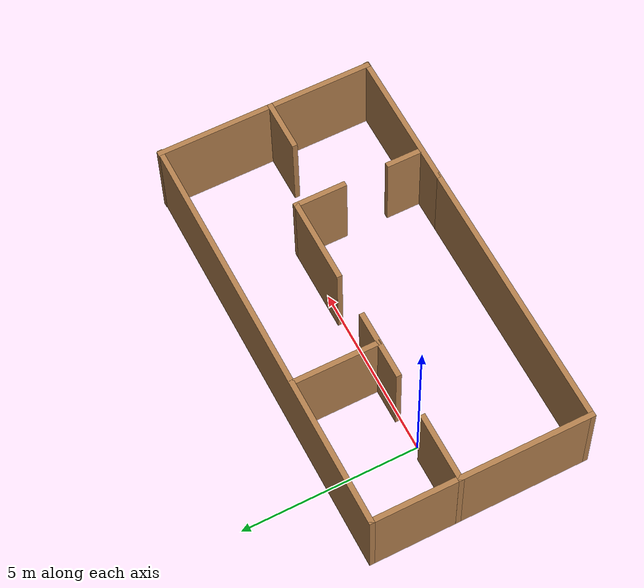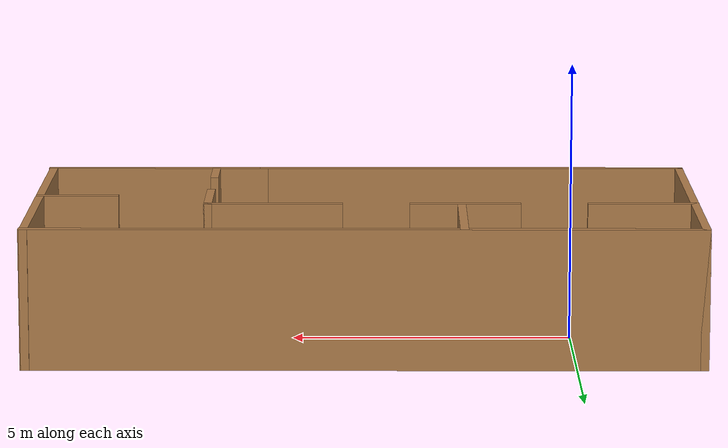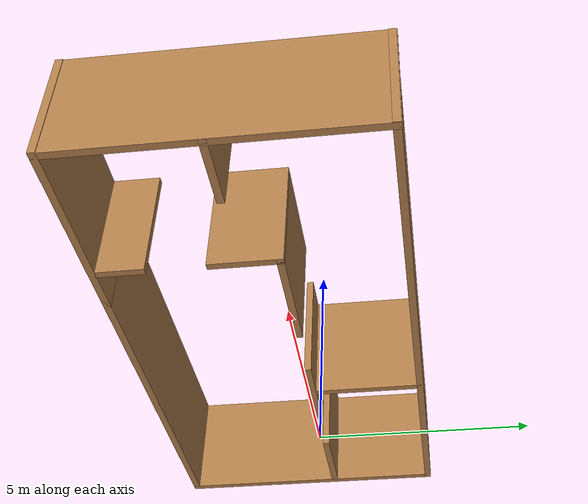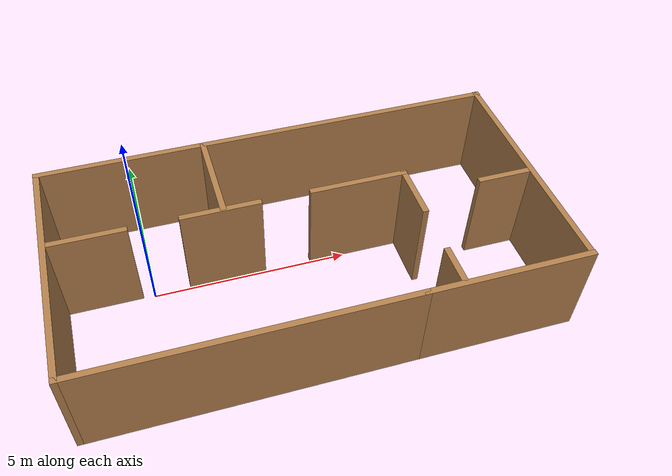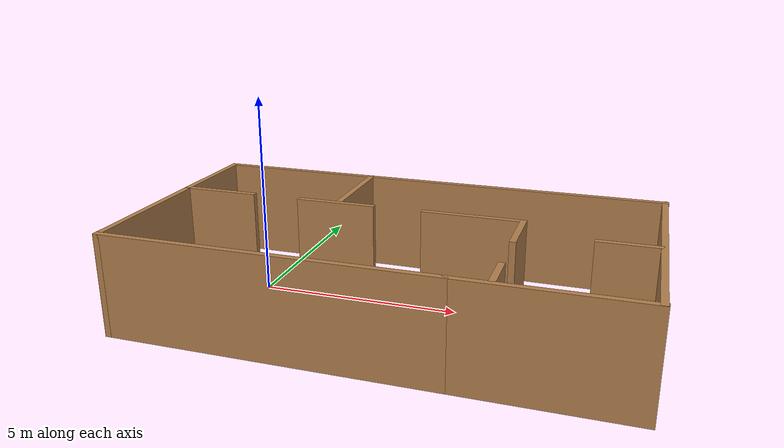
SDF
<?xml version='1.0'?>
<sdf version='1.6'>
  <model name='CASA_lab'>
    <pose frame=''>3.7016 -0.524612 0 0 -0 0</pose>
    <link name='Wall_0'>
      <collision name='Wall_0_Collision'>
        <geometry>
          <box>
            <size>8 0.15 2.5</size>
          </box>
        </geometry>
        <pose frame=''>0 0 1.25 0 -0 0</pose>
      </collision>
      <visual name='Wall_0_Visual'>
        <pose frame=''>0 0 1.25 0 -0 0</pose>
        <geometry>
          <box>
            <size>8 0.15 2.5</size>
          </box>
        </geometry>
        <material>
          <script>
            <uri>file://media/materials/scripts/gazebo.material</uri>
            <name>Gazebo/Wood</name>
          </script>
          <ambient>1 1 1 1</ambient>
        </material>
        <meta>
          <layer>0</layer>
        </meta>
      </visual>
      <pose frame=''>-1.99791 -3.05756 0 0 -0 0</pose>
    </link>
    <link name='Wall_12'>
      <collision name='Wall_12_Collision'>
        <geometry>
          <box>
            <size>2 0.15 2.5</size>
          </box>
        </geometry>
        <pose frame=''>0 0 1.25 0 -0 0</pose>
      </collision>
      <visual name='Wall_12_Visual'>
        <pose frame=''>0 0 1.25 0 -0 0</pose>
        <geometry>
          <box>
            <size>2 0.15 2.5</size>
          </box>
        </geometry>
        <material>
          <script>
            <uri>file://media/materials/scripts/gazebo.material</uri>
            <name>Gazebo/Wood</name>
          </script>
          <ambient>1 1 1 1</ambient>
        </material>
        <meta>
          <layer>0</layer>
        </meta>
      </visual>
      <pose frame=''>-1.79926 0.618124 0 0 -0 0</pose>
    </link>
    <link name='Wall_14'>
      <collision name='Wall_14_Collision'>
        <geometry>
          <box>
            <size>2.5 0.15 2.5</size>
          </box>
        </geometry>
        <pose frame=''>0 0 1.25 0 -0 0</pose>
      </collision>
      <visual name='Wall_14_Visual'>
        <pose frame=''>0 0 1.25 0 -0 0</pose>
        <geometry>
          <box>
            <size>2.5 0.15 2.5</size>
          </box>
        </geometry>
        <material>
          <script>
            <uri>file://media/materials/scripts/gazebo.material</uri>
            <name>Gazebo/Wood</name>
          </script>
          <ambient>1 1 1 1</ambient>
        </material>
        <meta>
          <layer>0</layer>
        </meta>
      </visual>
      <pose frame=''>1.65074 0.618124 0 0 -0 0</pose>
    </link>
    <link name='Wall_15'>
      <collision name='Wall_15_Collision'>
        <geometry>
          <box>
            <size>1.5 0.15 2.5</size>
          </box>
        </geometry>
        <pose frame=''>0 0 1.25 0 -0 0</pose>
      </collision>
      <visual name='Wall_15_Visual'>
        <pose frame=''>0 0 1.25 0 -0 0</pose>
        <geometry>
          <box>
            <size>1.5 0.15 2.5</size>
          </box>
        </geometry>
        <material>
          <script>
            <uri>file://media/materials/scripts/gazebo.material</uri>
            <name>Gazebo/Wood</name>
          </script>
          <ambient>1 1 1 1</ambient>
        </material>
        <meta>
          <layer>0</layer>
        </meta>
      </visual>
      <pose frame=''>2.82574 -0.056876 0 0 -0 -1.5708</pose>
    </link>
    <link name='Wall_17'>
      <collision name='Wall_17_Collision'>
        <geometry>
          <box>
            <size>1 0.15 2.5</size>
          </box>
        </geometry>
        <pose frame=''>0 0 1.25 0 -0 0</pose>
      </collision>
      <visual name='Wall_17_Visual'>
        <pose frame=''>0 0 1.25 0 -0 0</pose>
        <geometry>
          <box>
            <size>1 0.15 2.5</size>
          </box>
        </geometry>
        <material>
          <script>
            <uri>file://media/materials/scripts/gazebo.material</uri>
            <name>Gazebo/Wood</name>
          </script>
          <ambient>1 1 1 1</ambient>
        </material>
        <meta>
          <layer>0</layer>
        </meta>
      </visual>
      <pose frame=''>2.82574 -2.50688 0 0 -0 -1.5708</pose>
    </link>
    <link name='Wall_19'>
      <collision name='Wall_19_Collision'>
        <geometry>
          <box>
            <size>2.5 0.15 2.5</size>
          </box>
        </geometry>
        <pose frame=''>0 0 1.25 0 -0 0</pose>
      </collision>
      <visual name='Wall_19_Visual'>
        <pose frame=''>0 0 1.25 0 -0 0</pose>
        <geometry>
          <box>
            <size>2.5 0.15 2.5</size>
          </box>
        </geometry>
        <material>
          <script>
            <uri>file://media/materials/scripts/gazebo.material</uri>
            <name>Gazebo/Wood</name>
          </script>
          <ambient>1 1 1 1</ambient>
        </material>
        <meta>
          <layer>0</layer>
        </meta>
      </visual>
      <pose frame=''>-1.73522 1.83063 0 0 -0 1.5708</pose>
    </link>
    <link name='Wall_21'>
      <collision name='Wall_21_Collision'>
        <geometry>
          <box>
            <size>1.5 0.15 2.5</size>
          </box>
        </geometry>
        <pose frame=''>0 0 1.25 0 -0 0</pose>
      </collision>
      <visual name='Wall_21_Visual'>
        <pose frame=''>0 0 1.25 0 -0 0</pose>
        <geometry>
          <box>
            <size>1.5 0.15 2.5</size>
          </box>
        </geometry>
        <material>
          <script>
            <uri>file://media/materials/scripts/gazebo.material</uri>
            <name>Gazebo/Wood</name>
          </script>
          <ambient>1 1 1 1</ambient>
        </material>
        <meta>
          <layer>0</layer>
        </meta>
      </visual>
      <pose frame=''>5.23091 -0.164528 0 0 -0 3.14159</pose>
    </link>
    <link name='Wall_4'>
      <collision name='Wall_4_Collision'>
        <geometry>
          <box>
            <size>6.25 0.15 2.5</size>
          </box>
        </geometry>
        <pose frame=''>0 0 1.25 0 -0 0</pose>
      </collision>
      <visual name='Wall_4_Visual'>
        <pose frame=''>0 0 1.25 0 -0 0</pose>
        <geometry>
          <box>
            <size>6.25 0.15 2.5</size>
          </box>
        </geometry>
        <material>
          <script>
            <uri>file://media/materials/scripts/gazebo.material</uri>
            <name>Gazebo/Wood</name>
          </script>
          <ambient>1 1 1 1</ambient>
        </material>
        <meta>
          <layer>0</layer>
        </meta>
      </visual>
      <pose frame=''>-5.92291 -0.007562 0 0 -0 1.5708</pose>
    </link>
    <link name='Wall_5'>
      <collision name='Wall_5_Collision'>
        <geometry>
          <box>
            <size>11.9972 0.15 2.5</size>
          </box>
        </geometry>
        <pose frame=''>0 0 1.25 0 -0 0</pose>
      </collision>
      <visual name='Wall_5_Visual'>
        <pose frame=''>0 0 1.25 0 -0 0</pose>
        <geometry>
          <box>
            <size>11.9972 0.15 2.5</size>
          </box>
        </geometry>
        <material>
          <script>
            <uri>file://media/materials/scripts/gazebo.material</uri>
            <name>Gazebo/Wood</name>
          </script>
          <ambient>1 1 1 1</ambient>
        </material>
        <meta>
          <layer>0</layer>
        </meta>
      </visual>
      <pose frame=''>0.000676 3.04244 0 0 -0 0</pose>
    </link>
    <link name='Wall_6'>
      <collision name='Wall_6_Collision'>
        <geometry>
          <box>
            <size>6.25 0.15 2.5</size>
          </box>
        </geometry>
        <pose frame=''>0 0 1.25 0 -0 0</pose>
      </collision>
      <visual name='Wall_6_Visual'>
        <pose frame=''>0 0 1.25 0 -0 0</pose>
        <geometry>
          <box>
            <size>6.25 0.15 2.5</size>
          </box>
        </geometry>
        <material>
          <script>
            <uri>file://media/materials/scripts/gazebo.material</uri>
            <name>Gazebo/Wood</name>
          </script>
          <ambient>1 1 1 1</ambient>
        </material>
        <meta>
          <layer>0</layer>
        </meta>
      </visual>
      <pose frame=''>5.90914 0.007561 0 0 -0 -1.5708</pose>
    </link>
    <link name='Wall_7'>
      <collision name='Wall_7_Collision'>
        <geometry>
          <box>
            <size>4.14716 0.15 2.5</size>
          </box>
        </geometry>
        <pose frame=''>0 0 1.25 0 -0 0</pose>
      </collision>
      <visual name='Wall_7_Visual'>
        <pose frame=''>0 0 1.25 0 -0 0</pose>
        <geometry>
          <box>
            <size>4.14716 0.15 2.5</size>
          </box>
        </geometry>
        <material>
          <script>
            <uri>file://media/materials/scripts/gazebo.material</uri>
            <name>Gazebo/Wood</name>
          </script>
          <ambient>1 1 1 1</ambient>
        </material>
        <meta>
          <layer>0</layer>
        </meta>
      </visual>
      <pose frame=''>3.92568 -3.05756 0 0 -0 3.14159</pose>
    </link>
    <link name='Wall_9'>
      <collision name='Wall_9_Collision'>
        <geometry>
          <box>
            <size>2 0.15 2.5</size>
          </box>
        </geometry>
        <pose frame=''>0 0 1.25 0 -0 0</pose>
      </collision>
      <visual name='Wall_9_Visual'>
        <pose frame=''>0 0 1.25 0 -0 0</pose>
        <geometry>
          <box>
            <size>2 0.15 2.5</size>
          </box>
        </geometry>
        <material>
          <script>
            <uri>file://media/materials/scripts/gazebo.material</uri>
            <name>Gazebo/Wood</name>
          </script>
          <ambient>1 1 1 1</ambient>
        </material>
        <meta>
          <layer>0</layer>
        </meta>
      </visual>
      <pose frame=''>-4.99926 0.618124 0 0 -0 0</pose>
    </link>
    <static>1</static>
  </model>
</sdf>
